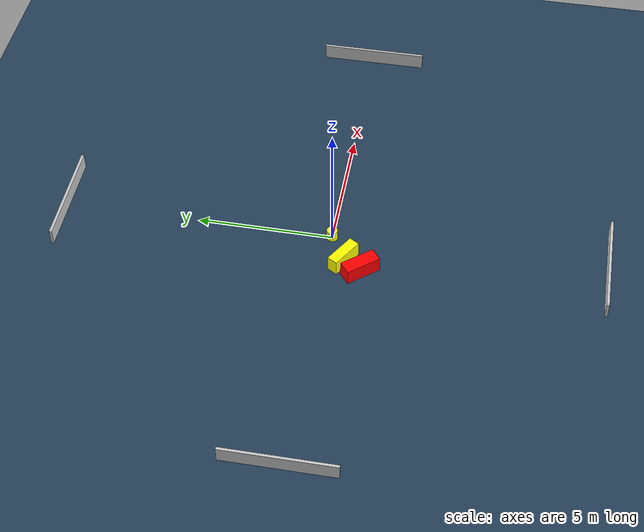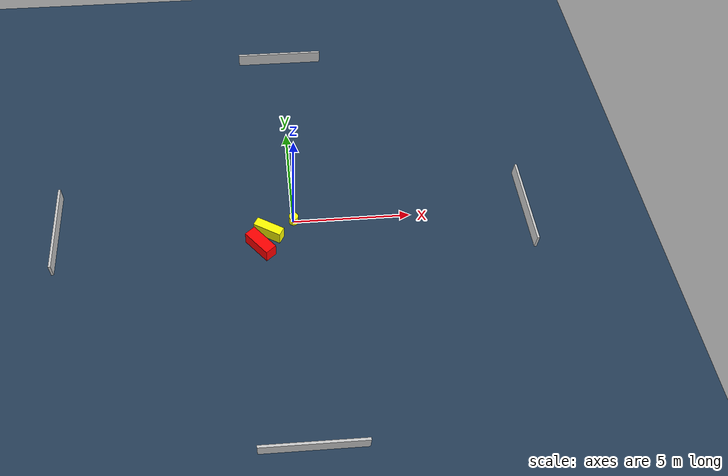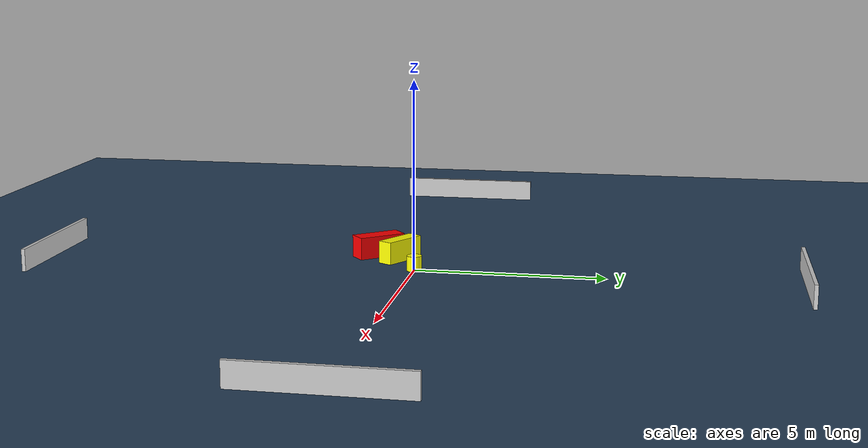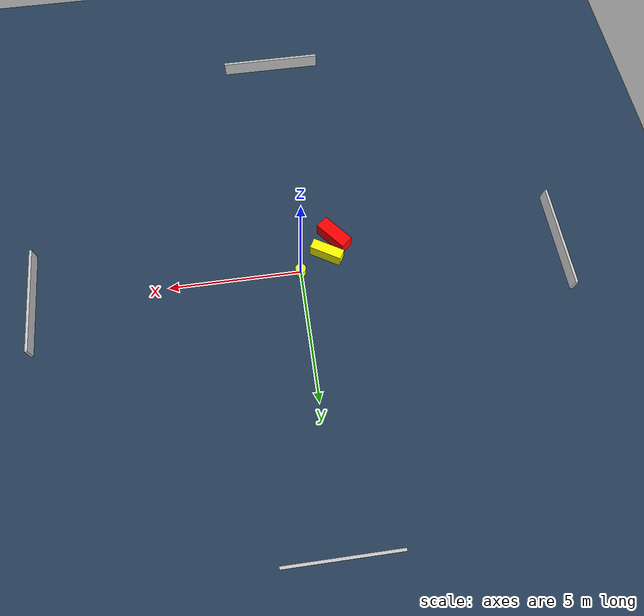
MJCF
<?xml version="1.0" ?>
<mujoco model="generated_environment">
  <option timestep="0.01" integrator="RK4" cone="elliptic"/>
  <default>
    <geom density="1"/>
  </default>
  <asset>
    <texture builtin="gradient" height="3072" name="skybox" rgb1="0.3 0.5 0.7" rgb2="0 0 0" type="skybox" width="512"/>
    <texture builtin="checker" height="300" name="groundplane" rgb1="0.2 0.3 0.4" rgb2="0.1 0.2 0.3" type="2d" width="300"/>
    <material name="groundplane" reflectance="0.2" texrepeat="5 5" texture="groundplane"/>
  </asset>
  <worldbody>
    <light dir="0 0 -1" directional="true" pos="0 0 1.5"/>
    <geom condim="3" friction="0.5 0.005 0.001" material="groundplane" name="floor" pos="0 0 0" size="0 0 0.05" type="plane"/>
    <body name="walls">
      <geom name="wall_1" condim="4" pos="-10.0 0.0 0.3" rgba="0.800000011920929 0.800000011920929 0.800000011920929 1.0" size="0.05 2.0 0.3" type="box"/>
      <geom name="wall_2" condim="4" pos="10.0 0.0 0.3" rgba="0.800000011920929 0.800000011920929 0.800000011920929 1.0" size="0.05 2.0 0.3" type="box"/>
      <geom name="wall_3" condim="4" pos="0.0 -10.0 0.3" rgba="0.800000011920929 0.800000011920929 0.800000011920929 1.0" size="2.0 0.05 0.3" type="box"/>
      <geom name="wall_4" condim="4" pos="0.0 10.0 0.3" rgba="0.800000011920929 0.800000011920929 0.800000011920929 1.0" size="2.0 0.05 0.3" type="box"/>
    </body>
    <body name="robot">
      <joint name="joint_x" type="slide" pos="0 0 0" axis="1 0 0"/>
      <joint name="joint_y" type="slide" pos="0 0 0" axis="0 1 0"/>
      <geom name="robot" type="cylinder" pos="0.0 0.0 0.2" size="0.2 0.2 0.0" mass="5.0" friction="1.0 0.005 0.0001" condim="4" rgba="1.0 1.0 0.0 1.0"/>
    </body>
    <body name="obstacle_1_movable">
      <geom name="obstacle_1_movable" condim="4" pos="-1.0830594095619397 -0.5884762896359119 0.3" euler="0 0 329.06840338167467" friction="0.0 0.005 0.001" rgba="1.0 1.0 0.0 1.0" size="0.6155796537574965 0.20078199739371927 0.3" type="box" mass="0.1"/>
      <joint type="free"/>
    </body>
    <body name="obstacle_2_static">
      <geom name="obstacle_2_static" condim="4" pos="-1.4629998218083973 -1.2612384195608408 0.3" euler="0 0 219.28677953056908" friction="0.0 0.005 0.001" rgba="1.0 0.0 0.0 1.0" size="0.2574189719857175 0.6595104054794411 0.3" type="box"/>
    </body>
  </worldbody>
  <actuator>
    <motor name="actuator_x" joint="joint_x" gear="1" ctrlrange="-1 1"/>
    <motor name="actuator_y" joint="joint_y" gear="1" ctrlrange="-1 1"/>
  </actuator>
</mujoco>
